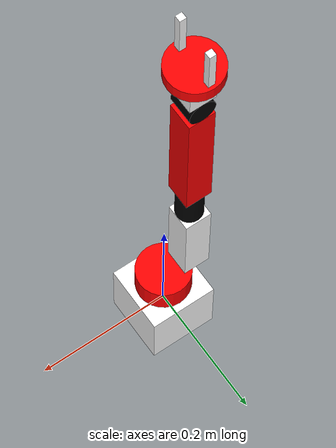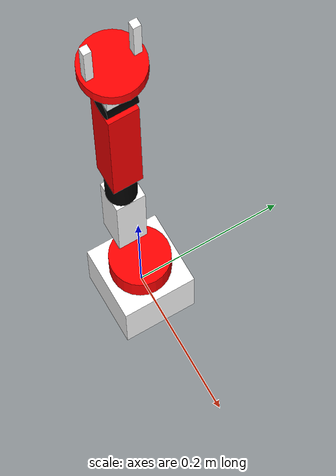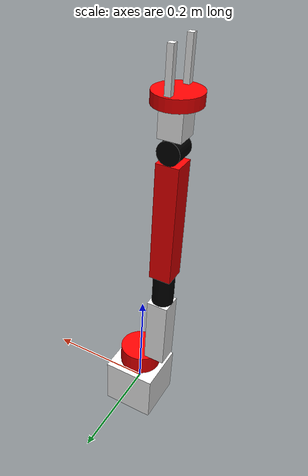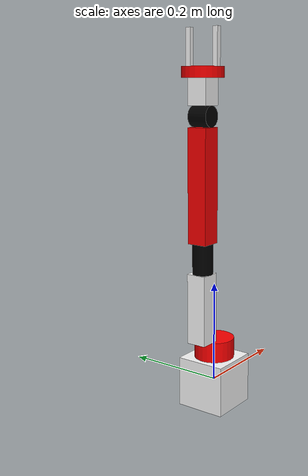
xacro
<?xml version="1.0"?>

<robot name="seven_dof_arm" xmlns:xacro="http://www.ros.org/wiki/xacro">

<!-- Materials -->

<material name="Black">
  <color rgba="0.0 0.0 0.0 1.0"/>
</material>

<material name="Red">
  <color rgba="1.0 0.0 0.0 1.0"/>
</material>

<material name="White">
  <color rgba="1.0 1.0 1.0 1.0"/>
</material>

<xacro:macro name="inertial_matrix" params="mass">
    <inertial>
        <mass value="${mass}"/>
        <inertia ixx="1.0" ixy="0.0" ixz="0.0" iyy="0.5" iyz="0.0" izz="1.0"/>
    </inertial>
</xacro:macro>

<link name="world"/>

<joint name="fix_world" type="fixed">
  <parent link="world"/>
  <child link="base_link"/>
  <origin xyz="0 0 0" rpy="0 0 0"/>
</joint>

<link name="base_link">
  <visual>
    <origin xyz="0 0 0" rpy="0 0 0"/>
    <geometry>
      <box size="0.1 0.1 0.1"/>
    </geometry>
    <material name="White"/>
  </visual>
  <collision>
    <origin xyz="0 0 0.05" rpy="0 0 0"/>
    <geometry>
      <box size="0.1 0.1 0.1"/>
    </geometry>
  </collision>
  <xacro:inertial_matrix mass="1"/>
</link>

<joint name="shoulder_pan_joint" type="revolute">
  <origin xyz="0 0 0.05" rpy="0 0 0"/>
  <axis xyz="0 0 1"/>
  <parent link="base_link"/>
  <child link="shoulder_pan_link"/>
  <limit effort="300" velocity="0.5" lower="-3.14" upper="3.14"/>
  <dynamics damping="50" friction="1"/>
</joint>

<link name="shoulder_pan_link">
  <visual>
    <origin xyz="0 0 0.02" rpy="0 0 0"/>
    <geometry>
      <cylinder radius="0.04" length="0.04"/>
    </geometry>
    <material name="Red"/>
  </visual>
  <collision>
    <origin xyz="0 0 0.02" rpy="0 0 0"/>
    <geometry>
      <cylinder radius="0.04" length="0.04"/>
    </geometry>
  </collision>
  <xacro:inertial_matrix mass="1"/>
</link>

<joint name="shoulder_pitch_joint" type="revolute">
  <parent link="shoulder_pan_link"/>
  <child link="shoulder_pitch_link"/>
  <origin xyz="-0.04 0.0 0.04" rpy="0 0 -${3.14/2}" />
  <axis xyz="1 0 0" />
  <limit effort="300" velocity="0.5" lower="0" upper="1.89994105047" />
  <dynamics damping="50" friction="1"/>
</joint>

<link name="shoulder_pitch_link">
  <visual>
    <origin xyz="-0.002 0 0.07" rpy="0 ${3.14/2} 0"/>
    <geometry>
      <box size="0.14 0.04 0.04"/>
    </geometry>
    <material name="White"/>
  </visual>
  <collision>
    <origin xyz="-0.002 0 0.07" rpy="0 ${3.14/2} 0"/>
    <geometry>
      <box size="0.14 0.04 0.04"/>
    </geometry>
  </collision>
  <xacro:inertial_matrix mass="1"/>
</link>

<joint name="elbow_roll_joint" type="revolute">
  <parent link="shoulder_pitch_link"/>
  <child link="elbow_roll_link"/>
  <origin xyz="0.0 0 0.14" rpy="${3.14} ${3.14/2} 0" />
  <axis xyz="-1 0 0" />
  <limit effort="300" velocity="0.5" lower="-3.14" upper="3.14" />
  <dynamics damping="50" friction="1"/>
</joint>

<link name="elbow_roll_link">
  <visual>
    <origin xyz="-0.03 0 0.0" rpy="0 ${3.14/2} 0"/>
    <geometry>
      <cylinder radius="0.02" length="0.06"/>
    </geometry>
    <material name="Black"/>
  </visual>
  <collision>
    <origin xyz="-0.03 0 0.0" rpy="0 ${3.14/2} 0"/>
    <geometry>
      <cylinder radius="0.02" length="0.06"/>
    </geometry>
  </collision>
  <xacro:inertial_matrix mass="1"/>
</link>

<joint name="elbow_pitch_joint" type="revolute">
  <parent link="elbow_roll_link"/>
  <child link="elbow_pitch_link"/>
  <origin xyz="-0.06 0 0" rpy="0 ${3.14/2} 0" />
  <axis xyz="1 0 0" />
  <limit effort="300" velocity="0.5" lower="0" upper="1.5" />
  <dynamics damping="50" friction="1"/>
</joint>

<link name="elbow_pitch_link">
  <visual>
    <origin xyz="0.0 0 -0.11" rpy="0 ${3.14/2} 0"/>
    <geometry>
      <box size="0.22 0.04 0.04"/>
    </geometry>
    <material name="Red"/>
  </visual>
  <collision>
    <origin xyz="0.0 0 -0.11" rpy="0 ${3.14/2} 0"/>
    <geometry>
      <box size="0.22 0.04 0.04"/>
    </geometry>
  </collision>
  <xacro:inertial_matrix mass="1"/>
</link>

<joint name="wrist_roll_joint" type="revolute">
  <parent link="elbow_pitch_link"/>
  <child link="wrist_roll_link"/>
  <origin xyz="0.0 0.0 -0.22" rpy="0 0 0" />
  <axis xyz="1 0 0" />
  <limit effort="300" velocity="0.5" lower="-1.57" upper="1.57" />
  <dynamics damping="50" friction="1"/>
</joint>

<link name="wrist_roll_link">
  <visual>
    <origin xyz="0.0 0.0 -0.02" rpy="0 ${3.14/2} 0"/>
    <geometry>
      <cylinder radius="0.02" length="0.04"/>
    </geometry>
    <material name="Black"/>
  </visual>
  <collision>
    <origin xyz="-0.02 0 0.00" rpy="0 ${3.14/2} 0"/>
    <geometry>
      <cylinder radius="0.02" length="0.04"/>
    </geometry>
  </collision>
  <xacro:inertial_matrix mass="1"/>
</link>

<joint name="wrist_pitch_joint" type="revolute">
  <parent link="wrist_roll_link"/>
  <child link="wrist_pitch_link"/>
  <origin xyz="0.0 0.0 -0.04" rpy="0 0 0" />
  <axis xyz="1 0 0" />
  <limit effort="300" velocity="0.5" lower="-1.5" upper="1.5" />
  <dynamics damping="50" friction="1"/>
</joint>

<link name="wrist_pitch_link">
  <visual>
    <origin xyz="0.0 0.0 -0.03" rpy="0 ${3.14/2} 0"/>
    <geometry>
      <box size="0.06 0.04 0.04"/>
    </geometry>
    <material name="White"/>
  </visual>
  <collision>
    <origin xyz="0 0 -0.03" rpy="0 ${3.14/2} 0"/>
    <geometry>
      <box size="0.06 0.04 0.04"/>
    </geometry>
  </collision>
  <xacro:inertial_matrix mass="1"/>
</link>

<joint name="gripper_roll_joint" type="revolute">
  <parent link="wrist_pitch_link"/>
  <child link="gripper_roll_link"/>
  <origin xyz="0 0 -0.06" rpy="-${1.5*3.14} ${.5*3.14} 0" />
  <axis xyz="1 0 0" />
  <limit effort="300" velocity="0.5" lower="-2.61799387799" upper="2.6128806087" />
  <dynamics damping="50" friction="1"/>
</joint>

<link name="gripper_roll_link">
  <visual>
    <origin xyz="0 0 0.0" rpy="0 -${3.14/2} 0"/>
    <geometry>
      <cylinder radius="0.04" length="0.02"/>
    </geometry>
    <material name="Red"/>
  </visual>
  <collision>
    <origin xyz="0 0 0.0" rpy="0 ${3.14/2} 0"/>
    <geometry>
      <cylinder radius="0.04" length="0.02"/>
    </geometry>
  </collision>
  <xacro:inertial_matrix mass="1"/>
</link>

<joint name="finger_joint1" type="prismatic">
  <parent link="gripper_roll_link"/>
  <child link="gripper_finger_link1"/>
  <origin xyz="0.0 0 0" />
  <axis xyz="0 1 0" />
    <limit effort="100" lower="0" upper="0.03" velocity="1.0"/>

    <safety_controller k_position="20"
                       k_velocity="20"
                       soft_lower_limit="${-0.15 }"
                       soft_upper_limit="${ 0.0 }"/>

  <dynamics damping="50" friction="1"/>
</joint>

<link name="gripper_finger_link1">
  <visual>
    <origin xyz="0.04 -0.03 0"/>
    <geometry>
      <box size="0.08 0.01 0.01"/>
    </geometry>
    <material name="White"/>
  </visual>
  <xacro:inertial_matrix mass="1"/>
</link>

<joint name="finger_joint2" type="prismatic">
  <parent link="gripper_roll_link"/>
  <child link="gripper_finger_link2"/>
  <origin xyz="0.0 0 0" />
  <axis xyz="0 1 0" />
  <limit effort="1" lower="-0.03" upper="0" velocity="1.0"/>

  <dynamics damping="50" friction="1"/>
</joint>

<link name="gripper_finger_link2">
  <visual>
    <origin xyz="0.04 0.03 0"/>
    <geometry>
      <box size="0.08 0.01 0.01"/>
    </geometry>
    <material name="White"/>
  </visual>
  <xacro:inertial_matrix mass="1"/>
</link>

<!-- Transmission block -->
<xacro:macro name="transmission_block" params="joint_name">
	<transmission name="tran1">
	  <type>transmission_interface/SimpleTransmission</type>
	  <joint name="${joint_name}">
	    <hardwareInterface>hardware_interface/PositionJointInterface</hardwareInterface>
	  </joint>
	  <actuator name="motor1">
	    <hardwareInterface>hardware_interface/PositionJointInterface</hardwareInterface>
	    <mechanicalReduction>1</mechanicalReduction>
	  </actuator>
	</transmission>
</xacro:macro>

<!-- Transmissions for ROS Control -->
<xacro:transmission_block joint_name="shoulder_pan_joint"/>
<xacro:transmission_block joint_name="shoulder_pitch_joint"/>
<xacro:transmission_block joint_name="elbow_roll_joint"/>
<xacro:transmission_block joint_name="elbow_pitch_joint"/>
<xacro:transmission_block joint_name="wrist_roll_joint"/>
<xacro:transmission_block joint_name="wrist_pitch_joint"/>
<xacro:transmission_block joint_name="gripper_roll_joint"/>
<xacro:transmission_block joint_name="finger_joint1"/>
<xacro:transmission_block joint_name="finger_joint2"/>

<!-- Colors in gazebo -->

<gazebo reference="base_link">
  <material>Gazebo/White</material>
</gazebo>

<gazebo reference="shoulder_pan_link">
  <material>Gazebo/Red</material>
</gazebo>

<gazebo reference="shoulder_pitch_link">
  <material>Gazebo/White</material>
</gazebo>

<gazebo reference="elbow_roll_link">
  <material>Gazebo/Black</material>
</gazebo>

<gazebo reference="elbow_pitch_link">
  <material>Gazebo/Red</material>
</gazebo>

<gazebo reference="wrist_roll_link">
  <material>Gazebo/Black</material>
</gazebo>

<gazebo reference="wrist_pitch_link">
  <material>Gazebo/White</material>
</gazebo>

<gazebo reference="gripper_roll_link">
  <material>Gazebo/Red</material>
</gazebo>

<gazebo reference="gripper_finger_link1">
  <material>Gazebo/White</material>
</gazebo>

<gazebo reference="gripper_finger_link1">
  <material>Gazebo/White</material>
</gazebo>

<!-- ros_control plugin -->
<gazebo>
  <plugin name="gazebo_ros_control" filename="libgazebo_ros_control.so">
    <robotNamespace>/seven_dof_arm</robotNamespace>
  </plugin>
</gazebo>

</robot>
